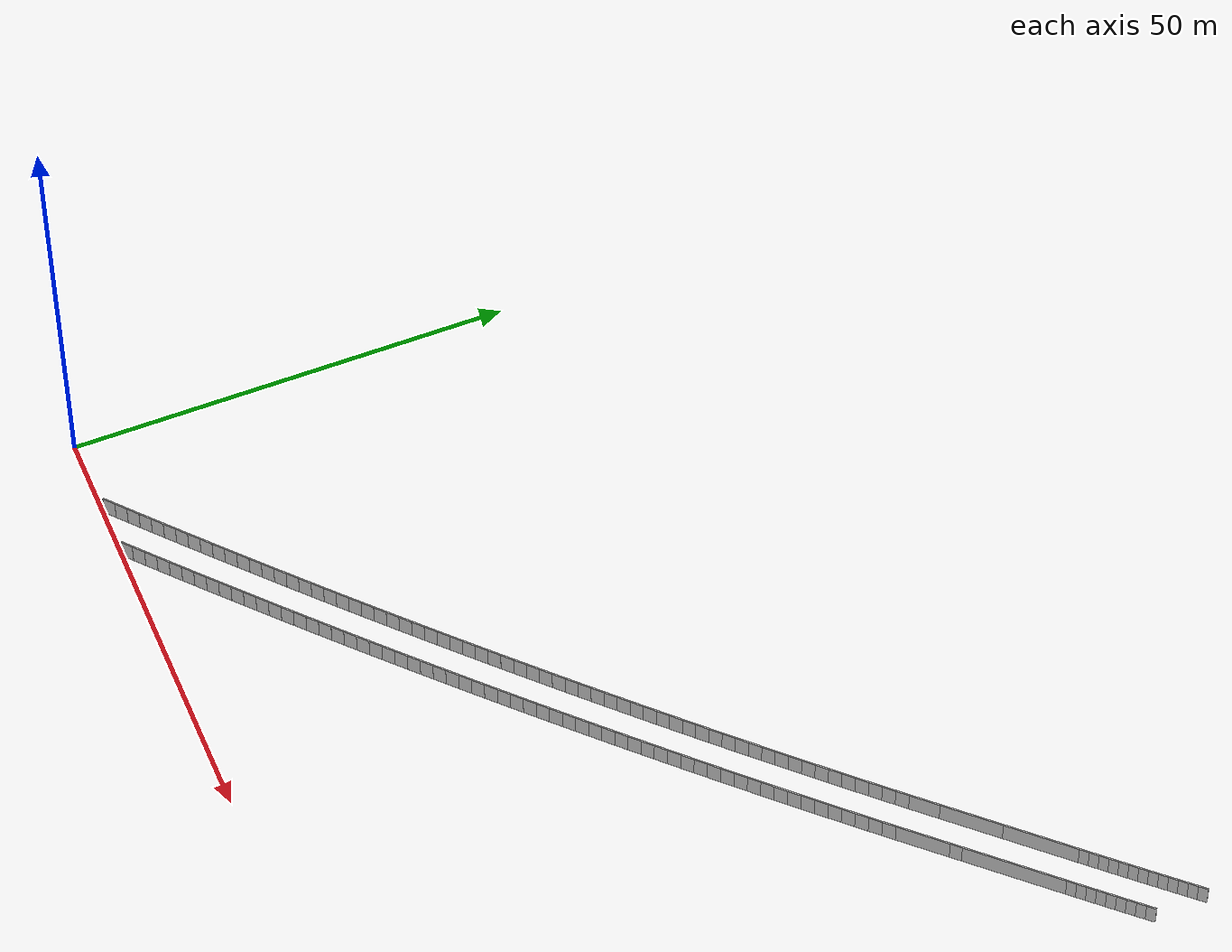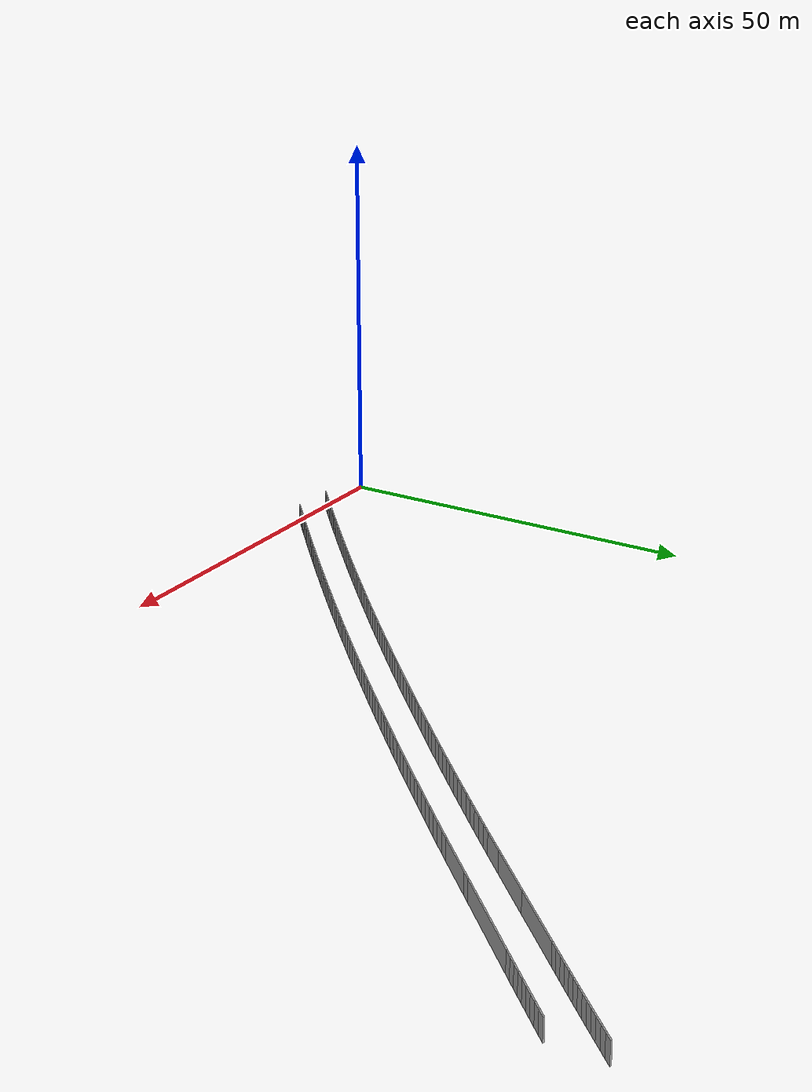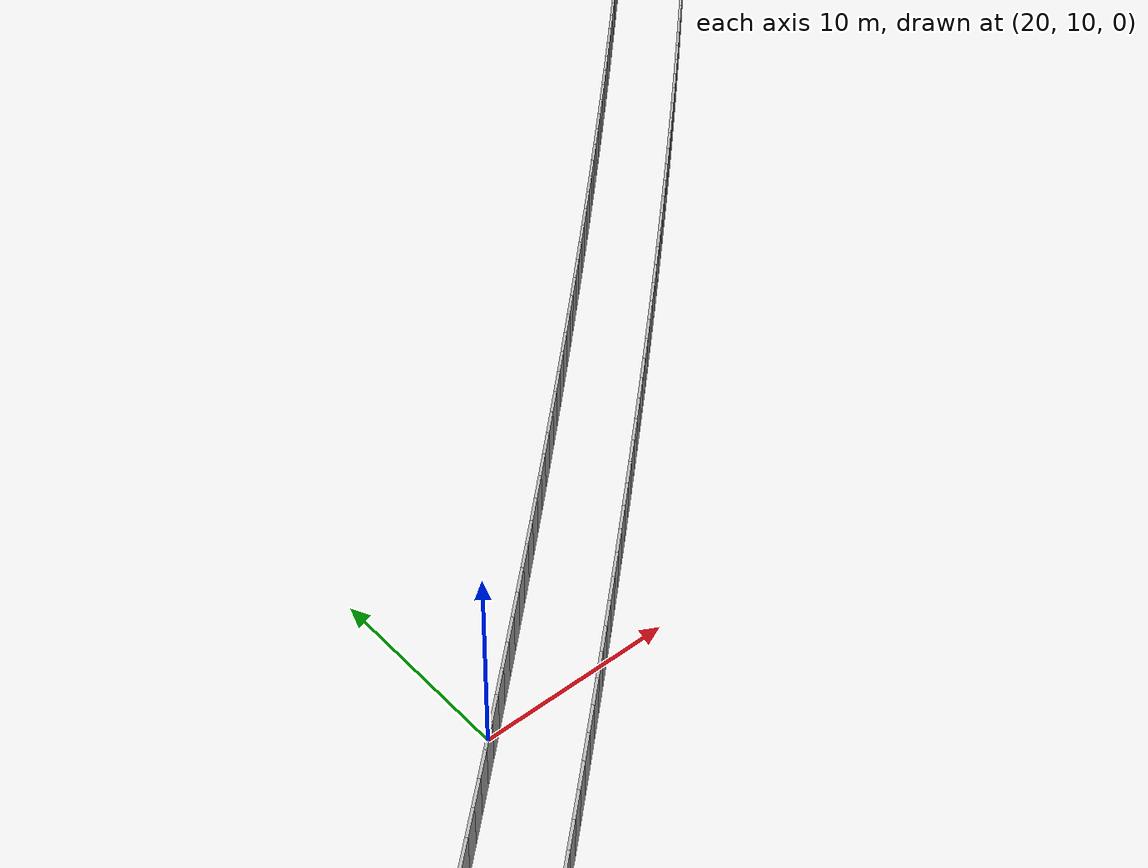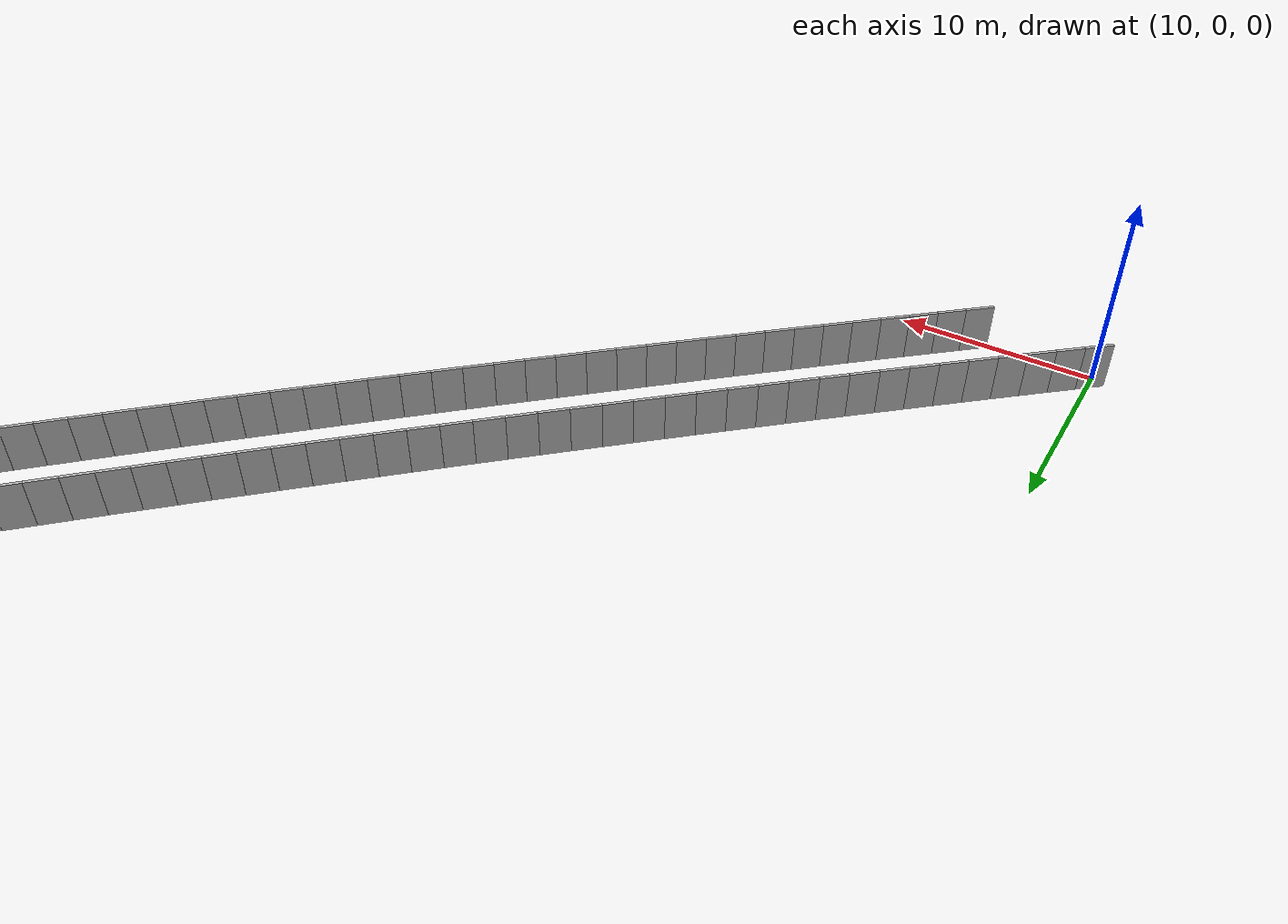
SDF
<sdf version="1.6">
 <model name="sps_1904">
  <static>1</static>
  <allow_auto_disable>0</allow_auto_disable>
  <link name="Wall243">
   <collision name="collision"><geometry><box><size>8.3183 0.15 2.5</size></box></geometry></collision>
   <visual name="visual">
    <geometry><box><size>8.3183 0.15 2.5</size></box></geometry>
    <transparency>0.0</transparency>
   </visual>
   <pose>87.3127 76.0104 1.25 0 0 -2.32351</pose>
  </link>
  <link name="Wall244">
   <collision name="collision"><geometry><box><size>6.96301 0.15 2.5</size></box></geometry></collision>
   <visual name="visual">
    <geometry><box><size>6.96301 0.15 2.5</size></box></geometry>
    <transparency>0.0</transparency>
   </visual>
   <pose>82.0894 70.434 1.25 0 0 -2.32351</pose>
  </link>
  <link name="Wall245">
   <collision name="collision"><geometry><box><size>3.39064 0.15 2.5</size></box></geometry></collision>
   <visual name="visual">
    <geometry><box><size>3.39064 0.15 2.5</size></box></geometry>
    <transparency>0.0</transparency>
   </visual>
   <pose>78.5504 66.6558 1.25 0 0 -2.32351</pose>
  </link>
  <link name="Wall309">
   <collision name="collision"><geometry><box><size>5.94722 0.15 2.5</size></box></geometry></collision>
   <visual name="visual">
    <geometry><box><size>5.94722 0.15 2.5</size></box></geometry>
    <transparency>0.0</transparency>
   </visual>
   <pose>82.4366 64.7482 1.25 0 -0 0.818091</pose>
  </link>
  <link name="Wall310">
   <collision name="collision"><geometry><box><size>1.33544 0.15 2.5</size></box></geometry></collision>
   <visual name="visual">
    <geometry><box><size>1.33544 0.15 2.5</size></box></geometry>
    <transparency>0.0</transparency>
   </visual>
   <pose>84.9259 67.4058 1.25 0 -0 0.818091</pose>
  </link>
  <link name="Wall311">
   <collision name="collision"><geometry><box><size>11.3992 0.15 2.5</size></box></geometry></collision>
   <visual name="visual">
    <geometry><box><size>11.3992 0.15 2.5</size></box></geometry>
    <transparency>0.0</transparency>
   </visual>
   <pose>89.2787 72.0529 1.25 0 -0 0.818091</pose>
  </link>
  <link name="Wall3417">
   <collision name="collision"><geometry><box><size>1.07595 0.15 2.5</size></box></geometry></collision>
   <visual name="visual">
    <geometry><box><size>1.07595 0.15 2.5</size></box></geometry>
    <transparency>0.0</transparency>
   </visual>
   <pose>90.5239 79.4385 1.25 0 -0 0.817935</pose>
  </link>
  <link name="Wall3418">
   <collision name="collision"><geometry><box><size>1.07582 0.15 2.5</size></box></geometry></collision>
   <visual name="visual">
    <geometry><box><size>1.07582 0.15 2.5</size></box></geometry>
    <transparency>0.0</transparency>
   </visual>
   <pose>91.259 80.2241 1.25 0 -0 0.819223</pose>
  </link>
  <link name="Wall3419">
   <collision name="collision"><geometry><box><size>1.07616 0.15 2.5</size></box></geometry></collision>
   <visual name="visual">
    <geometry><box><size>1.07616 0.15 2.5</size></box></geometry>
    <transparency>0.0</transparency>
   </visual>
   <pose>91.9932 81.0106 1.25 0 -0 0.820216</pose>
  </link>
  <link name="Wall3420">
   <collision name="collision"><geometry><box><size>1.07594 0.15 2.5</size></box></geometry></collision>
   <visual name="visual">
    <geometry><box><size>1.07594 0.15 2.5</size></box></geometry>
    <transparency>0.0</transparency>
   </visual>
   <pose>92.7268 81.7979 1.25 0 -0 0.821266</pose>
  </link>
  <link name="Wall3421">
   <collision name="collision"><geometry><box><size>1.07598 0.15 2.5</size></box></geometry></collision>
   <visual name="visual">
    <geometry><box><size>1.07598 0.15 2.5</size></box></geometry>
    <transparency>0.0</transparency>
   </visual>
   <pose>93.4594 82.5859 1.25 0 -0 0.822389</pose>
  </link>
  <link name="Wall3422">
   <collision name="collision"><geometry><box><size>1.07599 0.15 2.5</size></box></geometry></collision>
   <visual name="visual">
    <geometry><box><size>1.07599 0.15 2.5</size></box></geometry>
    <transparency>0.0</transparency>
   </visual>
   <pose>94.1911 83.3748 1.25 0 -0 0.823633</pose>
  </link>
  <link name="Wall3423">
   <collision name="collision"><geometry><box><size>1.07608 0.15 2.5</size></box></geometry></collision>
   <visual name="visual">
    <geometry><box><size>1.07608 0.15 2.5</size></box></geometry>
    <transparency>0.0</transparency>
   </visual>
   <pose>94.9219 84.1646 1.25 0 -0 0.824713</pose>
  </link>
  <link name="Wall3424">
   <collision name="collision"><geometry><box><size>1.07596 0.15 2.5</size></box></geometry></collision>
   <visual name="visual">
    <geometry><box><size>1.07596 0.15 2.5</size></box></geometry>
    <transparency>0.0</transparency>
   </visual>
   <pose>95.6518 84.9552 1.25 0 -0 0.825922</pose>
  </link>
  <link name="Wall3425">
   <collision name="collision"><geometry><box><size>1.07584 0.15 2.5</size></box></geometry></collision>
   <visual name="visual">
    <geometry><box><size>1.07584 0.15 2.5</size></box></geometry>
    <transparency>0.0</transparency>
   </visual>
   <pose>96.3806 85.7466 1.25 0 -0 0.827051</pose>
  </link>
  <link name="Wall3426">
   <collision name="collision"><geometry><box><size>1.07609 0.15 2.5</size></box></geometry></collision>
   <visual name="visual">
    <geometry><box><size>1.07609 0.15 2.5</size></box></geometry>
    <transparency>0.0</transparency>
   </visual>
   <pose>97.1088 86.5388 1.25 0 -0 0.827964</pose>
  </link>
  <link name="Wall3427">
   <collision name="collision"><geometry><box><size>1.07616 0.15 2.5</size></box></geometry></collision>
   <visual name="visual">
    <geometry><box><size>1.07616 0.15 2.5</size></box></geometry>
    <transparency>0.0</transparency>
   </visual>
   <pose>97.8361 87.3319 1.25 0 -0 0.829326</pose>
  </link>
  <link name="Wall3428">
   <collision name="collision"><geometry><box><size>1.07586 0.15 2.5</size></box></geometry></collision>
   <visual name="visual">
    <geometry><box><size>1.07586 0.15 2.5</size></box></geometry>
    <transparency>0.0</transparency>
   </visual>
   <pose>98.5624 88.1258 1.25 0 -0 0.830382</pose>
  </link>
  <link name="Wall3429">
   <collision name="collision"><geometry><box><size>1.07605 0.15 2.5</size></box></geometry></collision>
   <visual name="visual">
    <geometry><box><size>1.07605 0.15 2.5</size></box></geometry>
    <transparency>0.0</transparency>
   </visual>
   <pose>99.2877 88.9205 1.25 0 -0 0.831539</pose>
  </link>
  <link name="Wall4156">
   <collision name="collision"><geometry><box><size>1.49647 0.15 2.5</size></box></geometry></collision>
   <visual name="visual">
    <geometry><box><size>1.49647 0.15 2.5</size></box></geometry>
    <transparency>0.0</transparency>
   </visual>
   <pose>9.94445 0.671279 1.25 0 -0 0.715404</pose>
  </link>
  <link name="Wall4157">
   <collision name="collision"><geometry><box><size>1.49663 0.15 2.5</size></box></geometry></collision>
   <visual name="visual">
    <geometry><box><size>1.49663 0.15 2.5</size></box></geometry>
    <transparency>0.0</transparency>
   </visual>
   <pose>11.0732 1.65388 1.25 0 -0 0.717146</pose>
  </link>
  <link name="Wall4158">
   <collision name="collision"><geometry><box><size>1.49644 0.15 2.5</size></box></geometry></collision>
   <visual name="visual">
    <geometry><box><size>1.49644 0.15 2.5</size></box></geometry>
    <transparency>0.0</transparency>
   </visual>
   <pose>12.2004 2.63829 1.25 0 -0 0.718611</pose>
  </link>
  <link name="Wall4159">
   <collision name="collision"><geometry><box><size>1.49675 0.15 2.5</size></box></geometry></collision>
   <visual name="visual">
    <geometry><box><size>1.49675 0.15 2.5</size></box></geometry>
    <transparency>0.0</transparency>
   </visual>
   <pose>13.3261 3.6245 1.25 0 -0 0.720272</pose>
  </link>
  <link name="Wall4160">
   <collision name="collision"><geometry><box><size>1.49643 0.15 2.5</size></box></geometry></collision>
   <visual name="visual">
    <geometry><box><size>1.49643 0.15 2.5</size></box></geometry>
    <transparency>0.0</transparency>
   </visual>
   <pose>14.4502 4.6125 1.25 0 -0 0.721819</pose>
  </link>
  <link name="Wall4161">
   <collision name="collision"><geometry><box><size>1.49654 0.15 2.5</size></box></geometry></collision>
   <visual name="visual">
    <geometry><box><size>1.49654 0.15 2.5</size></box></geometry>
    <transparency>0.0</transparency>
   </visual>
   <pose>15.5727 5.60219 1.25 0 -0 0.723384</pose>
  </link>
  <link name="Wall4162">
   <collision name="collision"><geometry><box><size>1.49645 0.15 2.5</size></box></geometry></collision>
   <visual name="visual">
    <geometry><box><size>1.49645 0.15 2.5</size></box></geometry>
    <transparency>0.0</transparency>
   </visual>
   <pose>16.6937 6.59358 1.25 0 -0 0.724854</pose>
  </link>
  <link name="Wall4163">
   <collision name="collision"><geometry><box><size>1.49642 0.15 2.5</size></box></geometry></collision>
   <visual name="visual">
    <geometry><box><size>1.49642 0.15 2.5</size></box></geometry>
    <transparency>0.0</transparency>
   </visual>
   <pose>17.8131 7.58678 1.25 0 -0 0.726673</pose>
  </link>
  <link name="Wall4164">
   <collision name="collision"><geometry><box><size>1.49643 0.15 2.5</size></box></geometry></collision>
   <visual name="visual">
    <geometry><box><size>1.49643 0.15 2.5</size></box></geometry>
    <transparency>0.0</transparency>
   </visual>
   <pose>18.9308 8.58177 1.25 0 -0 0.728089</pose>
  </link>
  <link name="Wall4165">
   <collision name="collision"><geometry><box><size>1.49672 0.15 2.5</size></box></geometry></collision>
   <visual name="visual">
    <geometry><box><size>1.49672 0.15 2.5</size></box></geometry>
    <transparency>0.0</transparency>
   </visual>
   <pose>20.0471 9.57857 1.25 0 -0 0.729717</pose>
  </link>
  <link name="Wall4166">
   <collision name="collision"><geometry><box><size>1.49646 0.15 2.5</size></box></geometry></collision>
   <visual name="visual">
    <geometry><box><size>1.49646 0.15 2.5</size></box></geometry>
    <transparency>0.0</transparency>
   </visual>
   <pose>21.1618 10.5772 1.25 0 -0 0.731354</pose>
  </link>
  <link name="Wall4167">
   <collision name="collision"><geometry><box><size>1.49642 0.15 2.5</size></box></geometry></collision>
   <visual name="visual">
    <geometry><box><size>1.49642 0.15 2.5</size></box></geometry>
    <transparency>0.0</transparency>
   </visual>
   <pose>22.2747 11.5775 1.25 0 -0 0.732912</pose>
  </link>
  <link name="Wall4168">
   <collision name="collision"><geometry><box><size>1.49665 0.15 2.5</size></box></geometry></collision>
   <visual name="visual">
    <geometry><box><size>1.49665 0.15 2.5</size></box></geometry>
    <transparency>0.0</transparency>
   </visual>
   <pose>23.3863 12.5796 1.25 0 -0 0.734422</pose>
  </link>
  <link name="Wall4169">
   <collision name="collision"><geometry><box><size>1.49665 0.15 2.5</size></box></geometry></collision>
   <visual name="visual">
    <geometry><box><size>1.49665 0.15 2.5</size></box></geometry>
    <transparency>0.0</transparency>
   </visual>
   <pose>24.4963 13.5835 1.25 0 -0 0.736068</pose>
  </link>
  <link name="Wall4170">
   <collision name="collision"><geometry><box><size>1.49649 0.15 2.5</size></box></geometry></collision>
   <visual name="visual">
    <geometry><box><size>1.49649 0.15 2.5</size></box></geometry>
    <transparency>0.0</transparency>
   </visual>
   <pose>25.6045 14.5892 1.25 0 -0 0.737766</pose>
  </link>
  <link name="Wall4171">
   <collision name="collision"><geometry><box><size>1.4966 0.15 2.5</size></box></geometry></collision>
   <visual name="visual">
    <geometry><box><size>1.4966 0.15 2.5</size></box></geometry>
    <transparency>0.0</transparency>
   </visual>
   <pose>26.7112 15.5966 1.25 0 -0 0.739184</pose>
  </link>
  <link name="Wall4172">
   <collision name="collision"><geometry><box><size>1.4964 0.15 2.5</size></box></geometry></collision>
   <visual name="visual">
    <geometry><box><size>1.4964 0.15 2.5</size></box></geometry>
    <transparency>0.0</transparency>
   </visual>
   <pose>27.8163 16.6057 1.25 0 -0 0.740852</pose>
  </link>
  <link name="Wall4173">
   <collision name="collision"><geometry><box><size>1.49669 0.15 2.5</size></box></geometry></collision>
   <visual name="visual">
    <geometry><box><size>1.49669 0.15 2.5</size></box></geometry>
    <transparency>0.0</transparency>
   </visual>
   <pose>28.9199 17.6166 1.25 0 -0 0.742391</pose>
  </link>
  <link name="Wall4174">
   <collision name="collision"><geometry><box><size>1.49651 0.15 2.5</size></box></geometry></collision>
   <visual name="visual">
    <geometry><box><size>1.49651 0.15 2.5</size></box></geometry>
    <transparency>0.0</transparency>
   </visual>
   <pose>30.0219 18.6292 1.25 0 -0 0.743886</pose>
  </link>
  <link name="Wall4175">
   <collision name="collision"><geometry><box><size>1.49641 0.15 2.5</size></box></geometry></collision>
   <visual name="visual">
    <geometry><box><size>1.49641 0.15 2.5</size></box></geometry>
    <transparency>0.0</transparency>
   </visual>
   <pose>31.1222 19.6435 1.25 0 -0 0.745615</pose>
  </link>
  <link name="Wall4176">
   <collision name="collision"><geometry><box><size>1.49666 0.15 2.5</size></box></geometry></collision>
   <visual name="visual">
    <geometry><box><size>1.49666 0.15 2.5</size></box></geometry>
    <transparency>0.0</transparency>
   </visual>
   <pose>32.2208 20.6596 1.25 0 -0 0.747123</pose>
  </link>
  <link name="Wall4177">
   <collision name="collision"><geometry><box><size>1.49652 0.15 2.5</size></box></geometry></collision>
   <visual name="visual">
    <geometry><box><size>1.49652 0.15 2.5</size></box></geometry>
    <transparency>0.0</transparency>
   </visual>
   <pose>33.318 21.6775 1.25 0 -0 0.748822</pose>
  </link>
  <link name="Wall4178">
   <collision name="collision"><geometry><box><size>1.49657 0.15 2.5</size></box></geometry></collision>
   <visual name="visual">
    <geometry><box><size>1.49657 0.15 2.5</size></box></geometry>
    <transparency>0.0</transparency>
   </visual>
   <pose>34.4134 22.6972 1.25 0 -0 0.75041</pose>
  </link>
  <link name="Wall4179">
   <collision name="collision"><geometry><box><size>1.49653 0.15 2.5</size></box></geometry></collision>
   <visual name="visual">
    <geometry><box><size>1.49653 0.15 2.5</size></box></geometry>
    <transparency>0.0</transparency>
   </visual>
   <pose>35.5072 23.7186 1.25 0 -0 0.751939</pose>
  </link>
  <link name="Wall4180">
   <collision name="collision"><geometry><box><size>1.49642 0.15 2.5</size></box></geometry></collision>
   <visual name="visual">
    <geometry><box><size>1.49642 0.15 2.5</size></box></geometry>
    <transparency>0.0</transparency>
   </visual>
   <pose>36.5994 24.7416 1.25 0 -0 0.753466</pose>
  </link>
  <link name="Wall4181">
   <collision name="collision"><geometry><box><size>1.49665 0.15 2.5</size></box></geometry></collision>
   <visual name="visual">
    <geometry><box><size>1.49665 0.15 2.5</size></box></geometry>
    <transparency>0.0</transparency>
   </visual>
   <pose>37.6901 25.7663 1.25 0 -0 0.754942</pose>
  </link>
  <link name="Wall4182">
   <collision name="collision"><geometry><box><size>1.49645 0.15 2.5</size></box></geometry></collision>
   <visual name="visual">
    <geometry><box><size>1.49645 0.15 2.5</size></box></geometry>
    <transparency>0.0</transparency>
   </visual>
   <pose>38.7792 26.7927 1.25 0 -0 0.756582</pose>
  </link>
  <link name="Wall4183">
   <collision name="collision"><geometry><box><size>1.49633 0.15 2.5</size></box></geometry></collision>
   <visual name="visual">
    <geometry><box><size>1.49633 0.15 2.5</size></box></geometry>
    <transparency>0.0</transparency>
   </visual>
   <pose>39.8664 27.8208 1.25 0 -0 0.758283</pose>
  </link>
  <link name="Wall4184">
   <collision name="collision"><geometry><box><size>1.49675 0.15 2.5</size></box></geometry></collision>
   <visual name="visual">
    <geometry><box><size>1.49675 0.15 2.5</size></box></geometry>
    <transparency>0.0</transparency>
   </visual>
   <pose>40.9521 28.8508 1.25 0 -0 0.759877</pose>
  </link>
  <link name="Wall4185">
   <collision name="collision"><geometry><box><size>1.49651 0.15 2.5</size></box></geometry></collision>
   <visual name="visual">
    <geometry><box><size>1.49651 0.15 2.5</size></box></geometry>
    <transparency>0.0</transparency>
   </visual>
   <pose>42.0362 29.8826 1.25 0 -0 0.761488</pose>
  </link>
  <link name="Wall4186">
   <collision name="collision"><geometry><box><size>1.49633 0.15 2.5</size></box></geometry></collision>
   <visual name="visual">
    <geometry><box><size>1.49633 0.15 2.5</size></box></geometry>
    <transparency>0.0</transparency>
   </visual>
   <pose>43.1186 30.9159 1.25 0 -0 0.762899</pose>
  </link>
  <link name="Wall4187">
   <collision name="collision"><geometry><box><size>1.49658 0.15 2.5</size></box></geometry></collision>
   <visual name="visual">
    <geometry><box><size>1.49658 0.15 2.5</size></box></geometry>
    <transparency>0.0</transparency>
   </visual>
   <pose>44.1995 31.9509 1.25 0 -0 0.764604</pose>
  </link>
  <link name="Wall4188">
   <collision name="collision"><geometry><box><size>1.49662 0.15 2.5</size></box></geometry></collision>
   <visual name="visual">
    <geometry><box><size>1.49662 0.15 2.5</size></box></geometry>
    <transparency>0.0</transparency>
   </visual>
   <pose>45.2786 32.9878 1.25 0 -0 0.76622</pose>
  </link>
  <link name="Wall4189">
   <collision name="collision"><geometry><box><size>1.49649 0.15 2.5</size></box></geometry></collision>
   <visual name="visual">
    <geometry><box><size>1.49649 0.15 2.5</size></box></geometry>
    <transparency>0.0</transparency>
   </visual>
   <pose>46.3561 34.0264 1.25 0 -0 0.767834</pose>
  </link>
  <link name="Wall4190">
   <collision name="collision"><geometry><box><size>1.49645 0.15 2.5</size></box></geometry></collision>
   <visual name="visual">
    <geometry><box><size>1.49645 0.15 2.5</size></box></geometry>
    <transparency>0.0</transparency>
   </visual>
   <pose>47.4319 35.0666 1.25 0 -0 0.769333</pose>
  </link>
  <link name="Wall4191">
   <collision name="collision"><geometry><box><size>1.4968 0.15 2.5</size></box></geometry></collision>
   <visual name="visual">
    <geometry><box><size>1.4968 0.15 2.5</size></box></geometry>
    <transparency>0.0</transparency>
   </visual>
   <pose>48.5062 36.1086 1.25 0 -0 0.770923</pose>
  </link>
  <link name="Wall4192">
   <collision name="collision"><geometry><box><size>1.49651 0.15 2.5</size></box></geometry></collision>
   <visual name="visual">
    <geometry><box><size>1.49651 0.15 2.5</size></box></geometry>
    <transparency>0.0</transparency>
   </visual>
   <pose>49.5789 37.1523 1.25 0 -0 0.772478</pose>
  </link>
  <link name="Wall4193">
   <collision name="collision"><geometry><box><size>1.49631 0.15 2.5</size></box></geometry></collision>
   <visual name="visual">
    <geometry><box><size>1.49631 0.15 2.5</size></box></geometry>
    <transparency>0.0</transparency>
   </visual>
   <pose>50.6498 38.1975 1.25 0 -0 0.774034</pose>
  </link>
  <link name="Wall4194">
   <collision name="collision"><geometry><box><size>1.49659 0.15 2.5</size></box></geometry></collision>
   <visual name="visual">
    <geometry><box><size>1.49659 0.15 2.5</size></box></geometry>
    <transparency>0.0</transparency>
   </visual>
   <pose>51.7191 39.2444 1.25 0 -0 0.775564</pose>
  </link>
  <link name="Wall4195">
   <collision name="collision"><geometry><box><size>1.49656 0.15 2.5</size></box></geometry></collision>
   <visual name="visual">
    <geometry><box><size>1.49656 0.15 2.5</size></box></geometry>
    <transparency>0.0</transparency>
   </visual>
   <pose>52.7867 40.2932 1.25 0 -0 0.777468</pose>
  </link>
  <link name="Wall4196">
   <collision name="collision"><geometry><box><size>1.49659 0.15 2.5</size></box></geometry></collision>
   <visual name="visual">
    <geometry><box><size>1.49659 0.15 2.5</size></box></geometry>
    <transparency>0.0</transparency>
   </visual>
   <pose>53.8527 41.3437 1.25 0 -0 0.778765</pose>
  </link>
  <link name="Wall4197">
   <collision name="collision"><geometry><box><size>1.49653 0.15 2.5</size></box></geometry></collision>
   <visual name="visual">
    <geometry><box><size>1.49653 0.15 2.5</size></box></geometry>
    <transparency>0.0</transparency>
   </visual>
   <pose>54.917 42.3958 1.25 0 -0 0.780524</pose>
  </link>
  <link name="Wall4198">
   <collision name="collision"><geometry><box><size>1.49653 0.15 2.5</size></box></geometry></collision>
   <visual name="visual">
    <geometry><box><size>1.49653 0.15 2.5</size></box></geometry>
    <transparency>0.0</transparency>
   </visual>
   <pose>55.9795 43.4496 1.25 0 -0 0.781966</pose>
  </link>
  <link name="Wall4199">
   <collision name="collision"><geometry><box><size>1.49652 0.15 2.5</size></box></geometry></collision>
   <visual name="visual">
    <geometry><box><size>1.49652 0.15 2.5</size></box></geometry>
    <transparency>0.0</transparency>
   </visual>
   <pose>57.0405 44.505 1.25 0 -0 0.783524</pose>
  </link>
  <link name="Wall4200">
   <collision name="collision"><geometry><box><size>1.49665 0.15 2.5</size></box></geometry></collision>
   <visual name="visual">
    <geometry><box><size>1.49665 0.15 2.5</size></box></geometry>
    <transparency>0.0</transparency>
   </visual>
   <pose>58.0999 45.5621 1.25 0 -0 0.78511</pose>
  </link>
  <link name="Wall4201">
   <collision name="collision"><geometry><box><size>1.49643 0.15 2.5</size></box></geometry></collision>
   <visual name="visual">
    <geometry><box><size>1.49643 0.15 2.5</size></box></geometry>
    <transparency>0.0</transparency>
   </visual>
   <pose>59.1576 46.6209 1.25 0 -0 0.786811</pose>
  </link>
  <link name="Wall4202">
   <collision name="collision"><geometry><box><size>1.49652 0.15 2.5</size></box></geometry></collision>
   <visual name="visual">
    <geometry><box><size>1.49652 0.15 2.5</size></box></geometry>
    <transparency>0.0</transparency>
   </visual>
   <pose>60.2134 47.6814 1.25 0 -0 0.788426</pose>
  </link>
  <link name="Wall4203">
   <collision name="collision"><geometry><box><size>1.49653 0.15 2.5</size></box></geometry></collision>
   <visual name="visual">
    <geometry><box><size>1.49653 0.15 2.5</size></box></geometry>
    <transparency>0.0</transparency>
   </visual>
   <pose>61.2676 48.7436 1.25 0 -0 0.789926</pose>
  </link>
  <link name="Wall4204">
   <collision name="collision"><geometry><box><size>1.4965 0.15 2.5</size></box></geometry></collision>
   <visual name="visual">
    <geometry><box><size>1.4965 0.15 2.5</size></box></geometry>
    <transparency>0.0</transparency>
   </visual>
   <pose>62.3202 49.8074 1.25 0 -0 0.791455</pose>
  </link>
  <link name="Wall4205">
   <collision name="collision"><geometry><box><size>1.4966 0.15 2.5</size></box></geometry></collision>
   <visual name="visual">
    <geometry><box><size>1.4966 0.15 2.5</size></box></geometry>
    <transparency>0.0</transparency>
   </visual>
   <pose>63.3711 50.8729 1.25 0 -0 0.793127</pose>
  </link>
  <link name="Wall4206">
   <collision name="collision"><geometry><box><size>1.49641 0.15 2.5</size></box></geometry></collision>
   <visual name="visual">
    <geometry><box><size>1.49641 0.15 2.5</size></box></geometry>
    <transparency>0.0</transparency>
   </visual>
   <pose>64.4202 51.9401 1.25 0 -0 0.794772</pose>
  </link>
  <link name="Wall4207">
   <collision name="collision"><geometry><box><size>1.49665 0.15 2.5</size></box></geometry></collision>
   <visual name="visual">
    <geometry><box><size>1.49665 0.15 2.5</size></box></geometry>
    <transparency>0.0</transparency>
   </visual>
   <pose>65.4676 53.0089 1.25 0 -0 0.796183</pose>
  </link>
  <link name="Wall4208">
   <collision name="collision"><geometry><box><size>1.49646 0.15 2.5</size></box></geometry></collision>
   <visual name="visual">
    <geometry><box><size>1.49646 0.15 2.5</size></box></geometry>
    <transparency>0.0</transparency>
   </visual>
   <pose>66.5134 54.0794 1.25 0 -0 0.797944</pose>
  </link>
  <link name="Wall4209">
   <collision name="collision"><geometry><box><size>1.49666 0.15 2.5</size></box></geometry></collision>
   <visual name="visual">
    <geometry><box><size>1.49666 0.15 2.5</size></box></geometry>
    <transparency>0.0</transparency>
   </visual>
   <pose>67.5575 55.1516 1.25 0 -0 0.799384</pose>
  </link>
  <link name="Wall4210">
   <collision name="collision"><geometry><box><size>1.49644 0.15 2.5</size></box></geometry></collision>
   <visual name="visual">
    <geometry><box><size>1.49644 0.15 2.5</size></box></geometry>
    <transparency>0.0</transparency>
   </visual>
   <pose>68.5999 56.2254 1.25 0 -0 0.801117</pose>
  </link>
  <link name="Wall4211">
   <collision name="collision"><geometry><box><size>1.49648 0.15 2.5</size></box></geometry></collision>
   <visual name="visual">
    <geometry><box><size>1.49648 0.15 2.5</size></box></geometry>
    <transparency>0.0</transparency>
   </visual>
   <pose>69.6406 57.3008 1.25 0 -0 0.802559</pose>
  </link>
  <link name="Wall4212">
   <collision name="collision"><geometry><box><size>1.49648 0.15 2.5</size></box></geometry></collision>
   <visual name="visual">
    <geometry><box><size>1.49648 0.15 2.5</size></box></geometry>
    <transparency>0.0</transparency>
   </visual>
   <pose>70.6796 58.3778 1.25 0 -0 0.804145</pose>
  </link>
  <link name="Wall4213">
   <collision name="collision"><geometry><box><size>1.49657 0.15 2.5</size></box></geometry></collision>
   <visual name="visual">
    <geometry><box><size>1.49657 0.15 2.5</size></box></geometry>
    <transparency>0.0</transparency>
   </visual>
   <pose>71.7168 59.4565 1.25 0 -0 0.805788</pose>
  </link>
  <link name="Wall4214">
   <collision name="collision"><geometry><box><size>1.49657 0.15 2.5</size></box></geometry></collision>
   <visual name="visual">
    <geometry><box><size>1.49657 0.15 2.5</size></box></geometry>
    <transparency>0.0</transparency>
   </visual>
   <pose>72.7525 60.5369 1.25 0 -0 0.807317</pose>
  </link>
  <link name="Wall4215">
   <collision name="collision"><geometry><box><size>1.49668 0.15 2.5</size></box></geometry></collision>
   <visual name="visual">
    <geometry><box><size>1.49668 0.15 2.5</size></box></geometry>
    <transparency>0.0</transparency>
   </visual>
   <pose>73.7864 61.619 1.25 0 -0 0.809017</pose>
  </link>
  <link name="Wall4216">
   <collision name="collision"><geometry><box><size>1.49643 0.15 2.5</size></box></geometry></collision>
   <visual name="visual">
    <geometry><box><size>1.49643 0.15 2.5</size></box></geometry>
    <transparency>0.0</transparency>
   </visual>
   <pose>74.8185 62.7027 1.25 0 -0 0.81055</pose>
  </link>
  <link name="Wall4217">
   <collision name="collision"><geometry><box><size>1.49632 0.15 2.5</size></box></geometry></collision>
   <visual name="visual">
    <geometry><box><size>1.49632 0.15 2.5</size></box></geometry>
    <transparency>0.0</transparency>
   </visual>
   <pose>75.8487 63.7879 1.25 0 -0 0.812168</pose>
  </link>
  <link name="Wall4218">
   <collision name="collision"><geometry><box><size>1.49655 0.15 2.5</size></box></geometry></collision>
   <visual name="visual">
    <geometry><box><size>1.49655 0.15 2.5</size></box></geometry>
    <transparency>0.0</transparency>
   </visual>
   <pose>76.8774 64.8747 1.25 0 -0 0.813548</pose>
  </link>
  <link name="Wall4219">
   <collision name="collision"><geometry><box><size>1.08074 0.15 2.5</size></box></geometry></collision>
   <visual name="visual">
    <geometry><box><size>1.08074 0.15 2.5</size></box></geometry>
    <transparency>0.0</transparency>
   </visual>
   <pose>93.5446 76.607 1.25 0 -0 0.81783</pose>
  </link>
  <link name="Wall4220">
   <collision name="collision"><geometry><box><size>1.08078 0.15 2.5</size></box></geometry></collision>
   <visual name="visual">
    <geometry><box><size>1.08078 0.15 2.5</size></box></geometry>
    <transparency>0.0</transparency>
   </visual>
   <pose>94.2831 77.3961 1.25 0 -0 0.819187</pose>
  </link>
  <link name="Wall4221">
   <collision name="collision"><geometry><box><size>1.08064 0.15 2.5</size></box></geometry></collision>
   <visual name="visual">
    <geometry><box><size>1.08064 0.15 2.5</size></box></geometry>
    <transparency>0.0</transparency>
   </visual>
   <pose>95.0207 78.186 1.25 0 -0 0.820071</pose>
  </link>
  <link name="Wall4222">
   <collision name="collision"><geometry><box><size>1.08086 0.15 2.5</size></box></geometry></collision>
   <visual name="visual">
    <geometry><box><size>1.08086 0.15 2.5</size></box></geometry>
    <transparency>0.0</transparency>
   </visual>
   <pose>95.7574 78.9767 1.25 0 -0 0.821263</pose>
  </link>
  <link name="Wall4223">
   <collision name="collision"><geometry><box><size>1.08082 0.15 2.5</size></box></geometry></collision>
   <visual name="visual">
    <geometry><box><size>1.08082 0.15 2.5</size></box></geometry>
    <transparency>0.0</transparency>
   </visual>
   <pose>96.4933 79.7683 1.25 0 -0 0.822463</pose>
  </link>
  <link name="Wall4224">
   <collision name="collision"><geometry><box><size>1.0807 0.15 2.5</size></box></geometry></collision>
   <visual name="visual">
    <geometry><box><size>1.0807 0.15 2.5</size></box></geometry>
    <transparency>0.0</transparency>
   </visual>
   <pose>97.2283 80.5607 1.25 0 -0 0.823586</pose>
  </link>
  <link name="Wall4225">
   <collision name="collision"><geometry><box><size>1.08057 0.15 2.5</size></box></geometry></collision>
   <visual name="visual">
    <geometry><box><size>1.08057 0.15 2.5</size></box></geometry>
    <transparency>0.0</transparency>
   </visual>
   <pose>97.9622 81.3539 1.25 0 -0 0.824789</pose>
  </link>
  <link name="Wall4226">
   <collision name="collision"><geometry><box><size>1.08079 0.15 2.5</size></box></geometry></collision>
   <visual name="visual">
    <geometry><box><size>1.08079 0.15 2.5</size></box></geometry>
    <transparency>0.0</transparency>
   </visual>
   <pose>98.6953 82.1479 1.25 0 -0 0.825741</pose>
  </link>
  <link name="Wall4227">
   <collision name="collision"><geometry><box><size>1.08063 0.15 2.5</size></box></geometry></collision>
   <visual name="visual">
    <geometry><box><size>1.08063 0.15 2.5</size></box></geometry>
    <transparency>0.0</transparency>
   </visual>
   <pose>99.4275 82.9428 1.25 0 -0 0.827145</pose>
  </link>
  <link name="Wall7934">
   <collision name="collision"><geometry><box><size>1.50307 0.15 2.5</size></box></geometry></collision>
   <visual name="visual">
    <geometry><box><size>1.50307 0.15 2.5</size></box></geometry>
    <transparency>0.0</transparency>
   </visual>
   <pose>16.0578 0.512984 1.25 0 -0 0.720259</pose>
  </link>
  <link name="Wall7935">
   <collision name="collision"><geometry><box><size>1.50313 0.15 2.5</size></box></geometry></collision>
   <visual name="visual">
    <geometry><box><size>1.50313 0.15 2.5</size></box></geometry>
    <transparency>0.0</transparency>
   </visual>
   <pose>17.1868 1.50529 1.25 0 -0 0.721844</pose>
  </link>
  <link name="Wall7936">
   <collision name="collision"><geometry><box><size>1.50321 0.15 2.5</size></box></geometry></collision>
   <visual name="visual">
    <geometry><box><size>1.50321 0.15 2.5</size></box></geometry>
    <transparency>0.0</transparency>
   </visual>
   <pose>18.3143 2.4994 1.25 0 -0 0.723372</pose>
  </link>
  <link name="Wall7937">
   <collision name="collision"><geometry><box><size>1.50293 0.15 2.5</size></box></geometry></collision>
   <visual name="visual">
    <geometry><box><size>1.50293 0.15 2.5</size></box></geometry>
    <transparency>0.0</transparency>
   </visual>
   <pose>19.4401 3.49519 1.25 0 -0 0.724943</pose>
  </link>
  <link name="Wall7938">
   <collision name="collision"><geometry><box><size>1.50322 0.15 2.5</size></box></geometry></collision>
   <visual name="visual">
    <geometry><box><size>1.50322 0.15 2.5</size></box></geometry>
    <transparency>0.0</transparency>
   </visual>
   <pose>20.5644 4.49278 1.25 0 -0 0.726565</pose>
  </link>
  <link name="Wall7939">
   <collision name="collision"><geometry><box><size>1.50295 0.15 2.5</size></box></geometry></collision>
   <visual name="visual">
    <geometry><box><size>1.50295 0.15 2.5</size></box></geometry>
    <transparency>0.0</transparency>
   </visual>
   <pose>21.6872 5.49217 1.25 0 -0 0.728136</pose>
  </link>
  <link name="Wall7940">
   <collision name="collision"><geometry><box><size>1.50308 0.15 2.5</size></box></geometry></collision>
   <visual name="visual">
    <geometry><box><size>1.50308 0.15 2.5</size></box></geometry>
    <transparency>0.0</transparency>
   </visual>
   <pose>22.8082 6.49327 1.25 0 -0 0.729694</pose>
  </link>
  <link name="Wall7941">
   <collision name="collision"><geometry><box><size>1.50316 0.15 2.5</size></box></geometry></collision>
   <visual name="visual">
    <geometry><box><size>1.50316 0.15 2.5</size></box></geometry>
    <transparency>0.0</transparency>
   </visual>
   <pose>23.9278 7.4962 1.25 0 -0 0.731279</pose>
  </link>
  <link name="Wall7942">
   <collision name="collision"><geometry><box><size>1.50324 0.15 2.5</size></box></geometry></collision>
   <visual name="visual">
    <geometry><box><size>1.50324 0.15 2.5</size></box></geometry>
    <transparency>0.0</transparency>
   </visual>
   <pose>25.0459 8.50102 1.25 0 -0 0.732978</pose>
  </link>
  <link name="Wall7943">
   <collision name="collision"><geometry><box><size>1.50313 0.15 2.5</size></box></geometry></collision>
   <visual name="visual">
    <geometry><box><size>1.50313 0.15 2.5</size></box></geometry>
    <transparency>0.0</transparency>
   </visual>
   <pose>26.1623 9.50761 1.25 0 -0 0.734469</pose>
  </link>
  <link name="Wall7944">
   <collision name="collision"><geometry><box><size>1.50301 0.15 2.5</size></box></geometry></collision>
   <visual name="visual">
    <geometry><box><size>1.50301 0.15 2.5</size></box></geometry>
    <transparency>0.0</transparency>
   </visual>
   <pose>27.2771 10.5158 1.25 0 -0 0.73596</pose>
  </link>
  <link name="Wall7945">
   <collision name="collision"><geometry><box><size>1.50315 0.15 2.5</size></box></geometry></collision>
   <visual name="visual">
    <geometry><box><size>1.50315 0.15 2.5</size></box></geometry>
    <transparency>0.0</transparency>
   </visual>
   <pose>28.3903 11.5258 1.25 0 -0 0.737689</pose>
  </link>
  <link name="Wall7946">
   <collision name="collision"><geometry><box><size>1.50295 0.15 2.5</size></box></geometry></collision>
   <visual name="visual">
    <geometry><box><size>1.50295 0.15 2.5</size></box></geometry>
    <transparency>0.0</transparency>
   </visual>
   <pose>29.5017 12.5376 1.25 0 -0 0.739293</pose>
  </link>
  <link name="Wall7947">
   <collision name="collision"><geometry><box><size>1.50309 0.15 2.5</size></box></geometry></collision>
   <visual name="visual">
    <geometry><box><size>1.50309 0.15 2.5</size></box></geometry>
    <transparency>0.0</transparency>
   </visual>
   <pose>30.6115 13.5512 1.25 0 -0 0.740964</pose>
  </link>
  <link name="Wall7948">
   <collision name="collision"><geometry><box><size>1.50301 0.15 2.5</size></box></geometry></collision>
   <visual name="visual">
    <geometry><box><size>1.50301 0.15 2.5</size></box></geometry>
    <transparency>0.0</transparency>
   </visual>
   <pose>31.7198 14.5665 1.25 0 -0 0.742284</pose>
  </link>
  <link name="Wall7949">
   <collision name="collision"><geometry><box><size>1.5032 0.15 2.5</size></box></geometry></collision>
   <visual name="visual">
    <geometry><box><size>1.5032 0.15 2.5</size></box></geometry>
    <transparency>0.0</transparency>
   </visual>
   <pose>32.8267 15.5835 1.25 0 -0 0.743985</pose>
  </link>
  <link name="Wall7950">
   <collision name="collision"><geometry><box><size>1.50293 0.15 2.5</size></box></geometry></collision>
   <visual name="visual">
    <geometry><box><size>1.50293 0.15 2.5</size></box></geometry>
    <transparency>0.0</transparency>
   </visual>
   <pose>33.9318 16.6023 1.25 0 -0 0.745587</pose>
  </link>
  <link name="Wall7951">
   <collision name="collision"><geometry><box><size>1.50314 0.15 2.5</size></box></geometry></collision>
   <visual name="visual">
    <geometry><box><size>1.50314 0.15 2.5</size></box></geometry>
    <transparency>0.0</transparency>
   </visual>
   <pose>35.0352 17.6228 1.25 0 -0 0.747116</pose>
  </link>
  <link name="Wall7952">
   <collision name="collision"><geometry><box><size>1.50305 0.15 2.5</size></box></geometry></collision>
   <visual name="visual">
    <geometry><box><size>1.50305 0.15 2.5</size></box></geometry>
    <transparency>0.0</transparency>
   </visual>
   <pose>36.1371 18.6451 1.25 0 -0 0.74878</pose>
  </link>
  <link name="Wall7953">
   <collision name="collision"><geometry><box><size>1.50297 0.15 2.5</size></box></geometry></collision>
   <visual name="visual">
    <geometry><box><size>1.50297 0.15 2.5</size></box></geometry>
    <transparency>0.0</transparency>
   </visual>
   <pose>37.2374 19.6691 1.25 0 -0 0.750272</pose>
  </link>
  <link name="Wall7954">
   <collision name="collision"><geometry><box><size>1.50327 0.15 2.5</size></box></geometry></collision>
   <visual name="visual">
    <geometry><box><size>1.50327 0.15 2.5</size></box></geometry>
    <transparency>0.0</transparency>
   </visual>
   <pose>38.3361 20.6949 1.25 0 -0 0.751916</pose>
  </link>
  <link name="Wall7955">
   <collision name="collision"><geometry><box><size>1.50315 0.15 2.5</size></box></geometry></collision>
   <visual name="visual">
    <geometry><box><size>1.50315 0.15 2.5</size></box></geometry>
    <transparency>0.0</transparency>
   </visual>
   <pose>39.4332 21.7225 1.25 0 -0 0.753494</pose>
  </link>
  <link name="Wall7956">
   <collision name="collision"><geometry><box><size>1.50298 0.15 2.5</size></box></geometry></collision>
   <visual name="visual">
    <geometry><box><size>1.50298 0.15 2.5</size></box></geometry>
    <transparency>0.0</transparency>
   </visual>
   <pose>40.5285 22.7518 1.25 0 -0 0.755214</pose>
  </link>
  <link name="Wall7957">
   <collision name="collision"><geometry><box><size>1.5031 0.15 2.5</size></box></geometry></collision>
   <visual name="visual">
    <geometry><box><size>1.5031 0.15 2.5</size></box></geometry>
    <transparency>0.0</transparency>
   </visual>
   <pose>41.6222 23.7828 1.25 0 -0 0.756595</pose>
  </link>
  <link name="Wall7958">
   <collision name="collision"><geometry><box><size>1.50311 0.15 2.5</size></box></geometry></collision>
   <visual name="visual">
    <geometry><box><size>1.50311 0.15 2.5</size></box></geometry>
    <transparency>0.0</transparency>
   </visual>
   <pose>42.7143 24.8155 1.25 0 -0 0.758204</pose>
  </link>
  <link name="Wall7959">
   <collision name="collision"><geometry><box><size>1.50309 0.15 2.5</size></box></geometry></collision>
   <visual name="visual">
    <geometry><box><size>1.50309 0.15 2.5</size></box></geometry>
    <transparency>0.0</transparency>
   </visual>
   <pose>43.8048 25.85 1.25 0 -0 0.759898</pose>
  </link>
  <link name="Wall7960">
   <collision name="collision"><geometry><box><size>1.50304 0.15 2.5</size></box></geometry></collision>
   <visual name="visual">
    <geometry><box><size>1.50304 0.15 2.5</size></box></geometry>
    <transparency>0.0</transparency>
   </visual>
   <pose>44.8936 26.8862 1.25 0 -0 0.761391</pose>
  </link>
  <link name="Wall7961">
   <collision name="collision"><geometry><box><size>1.50315 0.15 2.5</size></box></geometry></collision>
   <visual name="visual">
    <geometry><box><size>1.50315 0.15 2.5</size></box></geometry>
    <transparency>0.0</transparency>
   </visual>
   <pose>45.9809 27.9241 1.25 0 -0 0.763001</pose>
  </link>
  <link name="Wall7962">
   <collision name="collision"><geometry><box><size>1.50319 0.15 2.5</size></box></geometry></collision>
   <visual name="visual">
    <geometry><box><size>1.50319 0.15 2.5</size></box></geometry>
    <transparency>0.0</transparency>
   </visual>
   <pose>47.0665 28.9638 1.25 0 -0 0.76461</pose>
  </link>
  <link name="Wall7963">
   <collision name="collision"><geometry><box><size>1.50318 0.15 2.5</size></box></geometry></collision>
   <visual name="visual">
    <geometry><box><size>1.50318 0.15 2.5</size></box></geometry>
    <transparency>0.0</transparency>
   </visual>
   <pose>48.1504 30.0052 1.25 0 -0 0.766132</pose>
  </link>
  <link name="Wall7964">
   <collision name="collision"><geometry><box><size>1.50284 0.15 2.5</size></box></geometry></collision>
   <visual name="visual">
    <geometry><box><size>1.50284 0.15 2.5</size></box></geometry>
    <transparency>0.0</transparency>
   </visual>
   <pose>49.2327 31.0482 1.25 0 -0 0.767764</pose>
  </link>
  <link name="Wall7965">
   <collision name="collision"><geometry><box><size>1.50306 0.15 2.5</size></box></geometry></collision>
   <visual name="visual">
    <geometry><box><size>1.50306 0.15 2.5</size></box></geometry>
    <transparency>0.0</transparency>
   </visual>
   <pose>50.3132 32.0929 1.25 0 -0 0.769318</pose>
  </link>
  <link name="Wall7966">
   <collision name="collision"><geometry><box><size>1.50319 0.15 2.5</size></box></geometry></collision>
   <visual name="visual">
    <geometry><box><size>1.50319 0.15 2.5</size></box></geometry>
    <transparency>0.0</transparency>
   </visual>
   <pose>51.3921 33.1394 1.25 0 -0 0.770927</pose>
  </link>
  <link name="Wall7967">
   <collision name="collision"><geometry><box><size>1.50303 0.15 2.5</size></box></geometry></collision>
   <visual name="visual">
    <geometry><box><size>1.50303 0.15 2.5</size></box></geometry>
    <transparency>0.0</transparency>
   </visual>
   <pose>52.4694 34.1876 1.25 0 -0 0.772505</pose>
  </link>
  <link name="Wall7968">
   <collision name="collision"><geometry><box><size>1.50313 0.15 2.5</size></box></geometry></collision>
   <visual name="visual">
    <geometry><box><size>1.50313 0.15 2.5</size></box></geometry>
    <transparency>0.0</transparency>
   </visual>
   <pose>53.5451 35.2375 1.25 0 -0 0.774085</pose>
  </link>
  <link name="Wall7969">
   <collision name="collision"><geometry><box><size>1.50297 0.15 2.5</size></box></geometry></collision>
   <visual name="visual">
    <geometry><box><size>1.50297 0.15 2.5</size></box></geometry>
    <transparency>0.0</transparency>
   </visual>
   <pose>54.619 36.2891 1.25 0 -0 0.775721</pose>
  </link>
  <link name="Wall7970">
   <collision name="collision"><geometry><box><size>1.50321 0.15 2.5</size></box></geometry></collision>
   <visual name="visual">
    <geometry><box><size>1.50321 0.15 2.5</size></box></geometry>
    <transparency>0.0</transparency>
   </visual>
   <pose>55.6913 37.3424 1.25 0 -0 0.777216</pose>
  </link>
  <link name="Wall7971">
   <collision name="collision"><geometry><box><size>1.50302 0.15 2.5</size></box></geometry></collision>
   <visual name="visual">
    <geometry><box><size>1.50302 0.15 2.5</size></box></geometry>
    <transparency>0.0</transparency>
   </visual>
   <pose>56.762 38.3974 1.25 0 -0 0.778823</pose>
  </link>
  <link name="Wall7972">
   <collision name="collision"><geometry><box><size>1.50318 0.15 2.5</size></box></geometry></collision>
   <visual name="visual">
    <geometry><box><size>1.50318 0.15 2.5</size></box></geometry>
    <transparency>0.0</transparency>
   </visual>
   <pose>57.831 39.4541 1.25 0 -0 0.780374</pose>
  </link>
  <link name="Wall7973">
   <collision name="collision"><geometry><box><size>1.50304 0.15 2.5</size></box></geometry></collision>
   <visual name="visual">
    <geometry><box><size>1.50304 0.15 2.5</size></box></geometry>
    <transparency>0.0</transparency>
   </visual>
   <pose>58.8983 40.5125 1.25 0 -0 0.78201</pose>
  </link>
  <link name="Wall7974">
   <collision name="collision"><geometry><box><size>1.50304 0.15 2.5</size></box></geometry></collision>
   <visual name="visual">
    <geometry><box><size>1.50304 0.15 2.5</size></box></geometry>
    <transparency>0.0</transparency>
   </visual>
   <pose>59.9638 41.5726 1.25 0 -0 0.783733</pose>
  </link>
  <link name="Wall7975">
   <collision name="collision"><geometry><box><size>1.50299 0.15 2.5</size></box></geometry></collision>
   <visual name="visual">
    <geometry><box><size>1.50299 0.15 2.5</size></box></geometry>
    <transparency>0.0</transparency>
   </visual>
   <pose>61.0275 42.6344 1.25 0 -0 0.785197</pose>
  </link>
  <link name="Wall7976">
   <collision name="collision"><geometry><box><size>1.50303 0.15 2.5</size></box></geometry></collision>
   <visual name="visual">
    <geometry><box><size>1.50303 0.15 2.5</size></box></geometry>
    <transparency>0.0</transparency>
   </visual>
   <pose>62.0897 43.6978 1.25 0 -0 0.786719</pose>
  </link>
  <link name="Wall7977">
   <collision name="collision"><geometry><box><size>1.50321 0.15 2.5</size></box></geometry></collision>
   <visual name="visual">
    <geometry><box><size>1.50321 0.15 2.5</size></box></geometry>
    <transparency>0.0</transparency>
   </visual>
   <pose>63.1504 44.7629 1.25 0 -0 0.788327</pose>
  </link>
  <link name="Wall7978">
   <collision name="collision"><geometry><box><size>1.50318 0.15 2.5</size></box></geometry></collision>
   <visual name="visual">
    <geometry><box><size>1.50318 0.15 2.5</size></box></geometry>
    <transparency>0.0</transparency>
   </visual>
   <pose>64.2093 45.8298 1.25 0 -0 0.790021</pose>
  </link>
  <link name="Wall7979">
   <collision name="collision"><geometry><box><size>1.50289 0.15 2.5</size></box></geometry></collision>
   <visual name="visual">
    <geometry><box><size>1.50289 0.15 2.5</size></box></geometry>
    <transparency>0.0</transparency>
   </visual>
   <pose>65.2663 46.8983 1.25 0 -0 0.791486</pose>
  </link>
  <link name="Wall7980">
   <collision name="collision"><geometry><box><size>1.50312 0.15 2.5</size></box></geometry></collision>
   <visual name="visual">
    <geometry><box><size>1.50312 0.15 2.5</size></box></geometry>
    <transparency>0.0</transparency>
   </visual>
   <pose>66.3218 47.9684 1.25 0 -0 0.793122</pose>
  </link>
  <link name="Wall7981">
   <collision name="collision"><geometry><box><size>1.50305 0.15 2.5</size></box></geometry></collision>
   <visual name="visual">
    <geometry><box><size>1.50305 0.15 2.5</size></box></geometry>
    <transparency>0.0</transparency>
   </visual>
   <pose>67.3756 49.0402 1.25 0 -0 0.794615</pose>
  </link>
  <link name="Wall7982">
   <collision name="collision"><geometry><box><size>1.50312 0.15 2.5</size></box></geometry></collision>
   <visual name="visual">
    <geometry><box><size>1.50312 0.15 2.5</size></box></geometry>
    <transparency>0.0</transparency>
   </visual>
   <pose>68.4277 50.1137 1.25 0 -0 0.796309</pose>
  </link>
  <link name="Wall7983">
   <collision name="collision"><geometry><box><size>1.50311 0.15 2.5</size></box></geometry></collision>
   <visual name="visual">
    <geometry><box><size>1.50311 0.15 2.5</size></box></geometry>
    <transparency>0.0</transparency>
   </visual>
   <pose>69.478 51.1889 1.25 0 -0 0.797831</pose>
  </link>
  <link name="Wall7984">
   <collision name="collision"><geometry><box><size>1.50323 0.15 2.5</size></box></geometry></collision>
   <visual name="visual">
    <geometry><box><size>1.50323 0.15 2.5</size></box></geometry>
    <transparency>0.0</transparency>
   </visual>
   <pose>70.5268 52.2658 1.25 0 -0 0.799495</pose>
  </link>
  <link name="Wall7985">
   <collision name="collision"><geometry><box><size>1.50322 0.15 2.5</size></box></geometry></collision>
   <visual name="visual">
    <geometry><box><size>1.50322 0.15 2.5</size></box></geometry>
    <transparency>0.0</transparency>
   </visual>
   <pose>71.5738 53.3444 1.25 0 -0 0.801017</pose>
  </link>
  <link name="Wall7986">
   <collision name="collision"><geometry><box><size>1.50308 0.15 2.5</size></box></geometry></collision>
   <visual name="visual">
    <geometry><box><size>1.50308 0.15 2.5</size></box></geometry>
    <transparency>0.0</transparency>
   </visual>
   <pose>72.6191 54.4246 1.25 0 -0 0.802627</pose>
  </link>
  <link name="Wall7987">
   <collision name="collision"><geometry><box><size>1.50313 0.15 2.5</size></box></geometry></collision>
   <visual name="visual">
    <geometry><box><size>1.50313 0.15 2.5</size></box></geometry>
    <transparency>0.0</transparency>
   </visual>
   <pose>73.6626 55.5065 1.25 0 -0 0.804292</pose>
  </link>
  <link name="Wall7988">
   <collision name="collision"><geometry><box><size>1.50309 0.15 2.5</size></box></geometry></collision>
   <visual name="visual">
    <geometry><box><size>1.50309 0.15 2.5</size></box></geometry>
    <transparency>0.0</transparency>
   </visual>
   <pose>74.7044 56.59 1.25 0 -0 0.805729</pose>
  </link>
  <link name="Wall7989">
   <collision name="collision"><geometry><box><size>1.50296 0.15 2.5</size></box></geometry></collision>
   <visual name="visual">
    <geometry><box><size>1.50296 0.15 2.5</size></box></geometry>
    <transparency>0.0</transparency>
   </visual>
   <pose>75.7445 57.675 1.25 0 -0 0.807339</pose>
  </link>
  <link name="Wall7990">
   <collision name="collision"><geometry><box><size>1.50302 0.15 2.5</size></box></geometry></collision>
   <visual name="visual">
    <geometry><box><size>1.50302 0.15 2.5</size></box></geometry>
    <transparency>0.0</transparency>
   </visual>
   <pose>76.7828 58.7617 1.25 0 -0 0.809004</pose>
  </link>
  <link name="Wall7991">
   <collision name="collision"><geometry><box><size>1.50303 0.15 2.5</size></box></geometry></collision>
   <visual name="visual">
    <geometry><box><size>1.50303 0.15 2.5</size></box></geometry>
    <transparency>0.0</transparency>
   </visual>
   <pose>77.8194 59.8501 1.25 0 -0 0.810526</pose>
  </link>
  <link name="Wall7992">
   <collision name="collision"><geometry><box><size>1.50318 0.15 2.5</size></box></geometry></collision>
   <visual name="visual">
    <geometry><box><size>1.50318 0.15 2.5</size></box></geometry>
    <transparency>0.0</transparency>
   </visual>
   <pose>78.8544 60.9401 1.25 0 -0 0.812017</pose>
  </link>
  <link name="Wall7993">
   <collision name="collision"><geometry><box><size>1.50303 0.15 2.5</size></box></geometry></collision>
   <visual name="visual">
    <geometry><box><size>1.50303 0.15 2.5</size></box></geometry>
    <transparency>0.0</transparency>
   </visual>
   <pose>79.8877 62.0317 1.25 0 -0 0.813657</pose>
  </link>
 </model>
</sdf>
